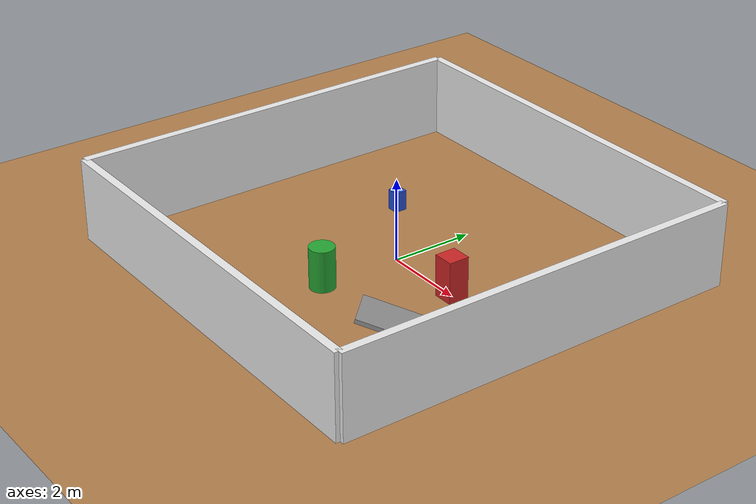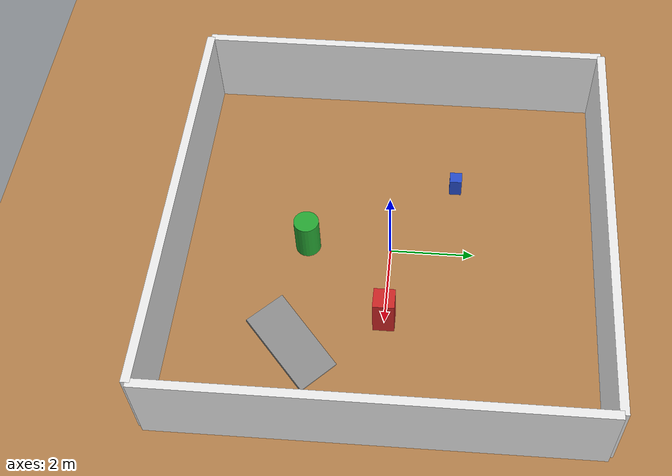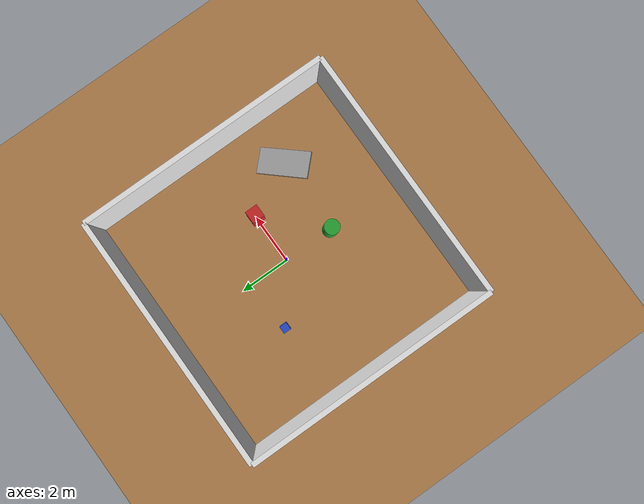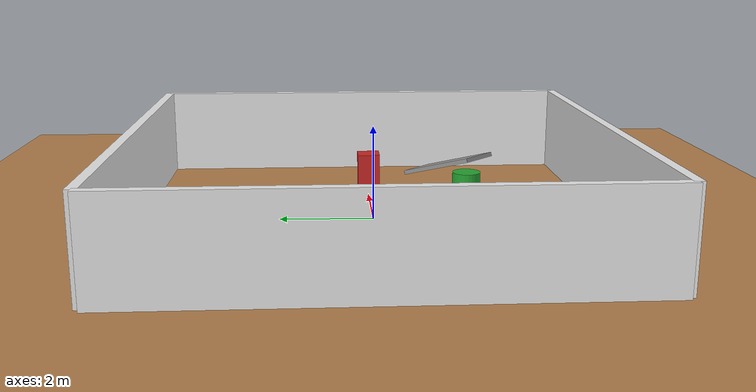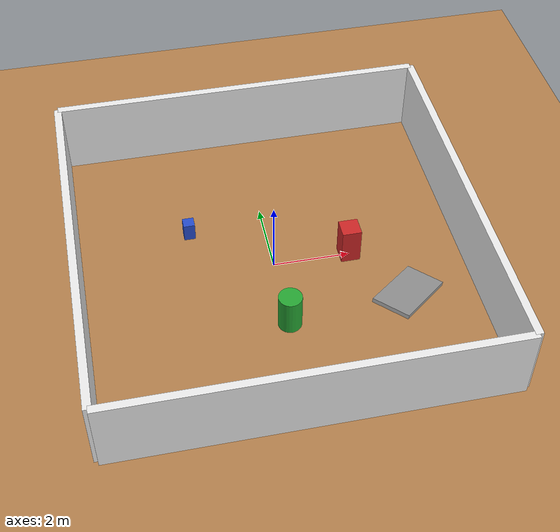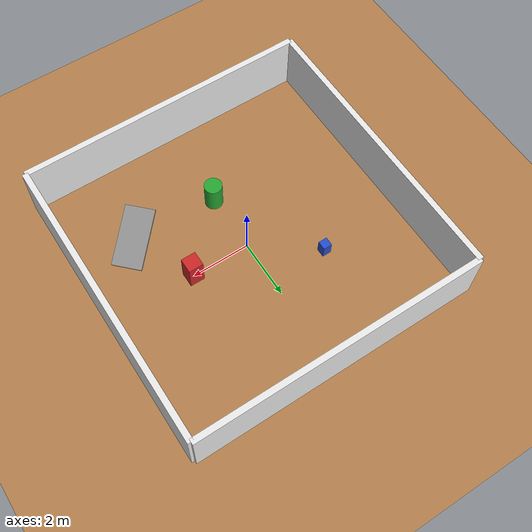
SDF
<?xml version="1.0"?>
<sdf version="1.6">
  <world name="humanoid_test_world">

    <!-- Physics Configuration -->
    <physics type="ode">
      <max_step_size>0.001</max_step_size>
      <real_time_factor>1</real_time_factor>
      <real_time_update_rate>1000</real_time_update_rate>
      <gravity>0 0 -9.81</gravity>
      <ode>
        <solver>
          <type>quick</type>
          <iters>50</iters>
          <sor>1.3</sor>
        </solver>
        <constraints>
          <cfm>0.0</cfm>
          <erp>0.2</erp>
          <contact_max_correcting_vel>100.0</contact_max_correcting_vel>
          <contact_surface_layer>0.001</contact_surface_layer>
        </constraints>
      </ode>
    </physics>

    <!-- Scene Configuration -->
    <scene>
      <ambient>0.5 0.5 0.5 1</ambient>
      <background>0.7 0.8 0.9 1</background>
      <shadows>1</shadows>
      <grid>true</grid>
    </scene>

    <!-- Sun (Primary Light) -->
    <light type="directional" name="sun">
      <cast_shadows>true</cast_shadows>
      <pose>0 0 10 0 0 0</pose>
      <diffuse>0.8 0.8 0.8 1</diffuse>
      <specular>0.2 0.2 0.2 1</specular>
      <direction>-0.5 0.1 -0.9</direction>
    </light>

    <!-- Additional Point Light -->
    <light type="point" name="point_light">
      <cast_shadows>false</cast_shadows>
      <pose>0 0 5 0 0 0</pose>
      <diffuse>0.5 0.5 0.5 1</diffuse>
      <specular>0.1 0.1 0.1 1</specular>
      <attenuation>
        <range>20</range>
        <constant>0.5</constant>
        <linear>0.01</linear>
        <quadratic>0.001</quadratic>
      </attenuation>
    </light>

    <!-- Ground Plane with Texture -->
    <model name="ground_plane">
      <static>true</static>
      <link name="link">
        <collision name="collision">
          <geometry>
            <plane>
              <normal>0 0 1</normal>
              <size>100 100</size>
            </plane>
          </geometry>
          <surface>
            <friction>
              <ode>
                <mu>100</mu>
                <mu2>50</mu2>
              </ode>
            </friction>
            <contact>
              <ode>
                <kp>1e7</kp>
                <kd>1</kd>
                <max_vel>0.01</max_vel>
                <min_depth>0.001</min_depth>
              </ode>
            </contact>
          </surface>
        </collision>
        <visual name="visual">
          <cast_shadows>false</cast_shadows>
          <geometry>
            <plane>
              <normal>0 0 1</normal>
              <size>100 100</size>
            </plane>
          </geometry>
          <material>
            <script>
              <uri>file://media/materials/scripts/gazebo.material</uri>
              <name>Gazebo/Wood</name>
            </script>
          </material>
        </visual>
      </link>
    </model>

    <!-- Test Box 1 (Obstacle) -->
    <model name="test_box_1">
      <pose>2 0 0.5 0 0 0</pose>
      <static>false</static>
      <link name="link">
        <inertial>
          <mass>1.0</mass>
          <inertia>
            <ixx>0.166667</ixx>
            <ixy>0</ixy>
            <ixz>0</ixz>
            <iyy>0.166667</iyy>
            <iyz>0</iyz>
            <izz>0.166667</izz>
          </inertia>
        </inertial>
        <collision name="collision">
          <geometry>
            <box>
              <size>0.5 0.5 1.0</size>
            </box>
          </geometry>
          <surface>
            <friction>
              <ode>
                <mu>1.0</mu>
                <mu2>1.0</mu2>
              </ode>
            </friction>
            <contact>
              <ode>
                <kp>1e6</kp>
                <kd>1</kd>
              </ode>
            </contact>
          </surface>
        </collision>
        <visual name="visual">
          <geometry>
            <box>
              <size>0.5 0.5 1.0</size>
            </box>
          </geometry>
          <material>
            <script>
              <uri>file://media/materials/scripts/gazebo.material</uri>
              <name>Gazebo/Red</name>
            </script>
          </material>
        </visual>
      </link>
    </model>

    <!-- Test Box 2 (Different Height) -->
    <model name="test_box_2">
      <pose>-2 1.5 0.25 0 0 0</pose>
      <static>false</static>
      <link name="link">
        <inertial>
          <mass>0.5</mass>
          <inertia>
            <ixx>0.020833</ixx>
            <ixy>0</ixy>
            <ixz>0</ixz>
            <iyy>0.020833</iyy>
            <iyz>0</iyz>
            <izz>0.020833</izz>
          </inertia>
        </inertial>
        <collision name="collision">
          <geometry>
            <box>
              <size>0.3 0.3 0.5</size>
            </box>
          </geometry>
        </collision>
        <visual name="visual">
          <geometry>
            <box>
              <size>0.3 0.3 0.5</size>
            </box>
          </geometry>
          <material>
            <script>
              <uri>file://media/materials/scripts/gazebo.material</uri>
              <name>Gazebo/Blue</name>
            </script>
          </material>
        </visual>
      </link>
    </model>

    <!-- Cylinder Obstacle -->
    <model name="cylinder_obstacle">
      <pose>0 -2 0.5 0 0 0</pose>
      <static>true</static>
      <link name="link">
        <collision name="collision">
          <geometry>
            <cylinder>
              <radius>0.3</radius>
              <length>1.0</length>
            </cylinder>
          </geometry>
        </collision>
        <visual name="visual">
          <geometry>
            <cylinder>
              <radius>0.3</radius>
              <length>1.0</length>
            </cylinder>
          </geometry>
          <material>
            <script>
              <uri>file://media/materials/scripts/gazebo.material</uri>
              <name>Gazebo/Green</name>
            </script>
          </material>
        </visual>
      </link>
    </model>

    <!-- Ramp for Testing -->
    <model name="ramp">
      <pose>3 -2 0 0 0 0.785398</pose>
      <static>true</static>
      <link name="link">
        <collision name="collision">
          <geometry>
            <box>
              <size>2.0 1.0 0.1</size>
            </box>
          </geometry>
          <pose>0 0 0.5 0 0.3 0</pose>
        </collision>
        <visual name="visual">
          <geometry>
            <box>
              <size>2.0 1.0 0.1</size>
            </box>
          </geometry>
          <pose>0 0 0.5 0 0.3 0</pose>
          <material>
            <script>
              <uri>file://media/materials/scripts/gazebo.material</uri>
              <name>Gazebo/Grey</name>
            </script>
          </material>
        </visual>
      </link>
    </model>

    <!-- Walls (Testing Arena) -->
    <model name="wall_north">
      <pose>0 5 1 0 0 0</pose>
      <static>true</static>
      <link name="link">
        <collision name="collision">
          <geometry>
            <box>
              <size>10 0.2 2</size>
            </box>
          </geometry>
        </collision>
        <visual name="visual">
          <geometry>
            <box>
              <size>10 0.2 2</size>
            </box>
          </geometry>
          <material>
            <script>
              <uri>file://media/materials/scripts/gazebo.material</uri>
              <name>Gazebo/White</name>
            </script>
          </material>
        </visual>
      </link>
    </model>

    <model name="wall_south">
      <pose>0 -5 1 0 0 0</pose>
      <static>true</static>
      <link name="link">
        <collision name="collision">
          <geometry>
            <box>
              <size>10 0.2 2</size>
            </box>
          </geometry>
        </collision>
        <visual name="visual">
          <geometry>
            <box>
              <size>10 0.2 2</size>
            </box>
          </geometry>
          <material>
            <script>
              <uri>file://media/materials/scripts/gazebo.material</uri>
              <name>Gazebo/White</name>
            </script>
          </material>
        </visual>
      </link>
    </model>

    <model name="wall_east">
      <pose>5 0 1 0 0 0</pose>
      <static>true</static>
      <link name="link">
        <collision name="collision">
          <geometry>
            <box>
              <size>0.2 10 2</size>
            </box>
          </geometry>
        </collision>
        <visual name="visual">
          <geometry>
            <box>
              <size>0.2 10 2</size>
            </box>
          </geometry>
          <material>
            <script>
              <uri>file://media/materials/scripts/gazebo.material</uri>
              <name>Gazebo/White</name>
            </script>
          </material>
        </visual>
      </link>
    </model>

    <model name="wall_west">
      <pose>-5 0 1 0 0 0</pose>
      <static>true</static>
      <link name="link">
        <collision name="collision">
          <geometry>
            <box>
              <size>0.2 10 2</size>
            </box>
          </geometry>
        </collision>
        <visual name="visual">
          <geometry>
            <box>
              <size>0.2 10 2</size>
            </box>
          </geometry>
          <material>
            <script>
              <uri>file://media/materials/scripts/gazebo.material</uri>
              <name>Gazebo/White</name>
            </script>
          </material>
        </visual>
      </link>
    </model>

    <!-- GUI Configuration -->
    <gui fullscreen='0'>
      <camera name='user_camera'>
        <pose>8 -8 5 0 0.4 2.356</pose>
        <view_controller>orbit</view_controller>
        <projection_type>perspective</projection_type>
      </camera>
    </gui>

  </world>
</sdf>
